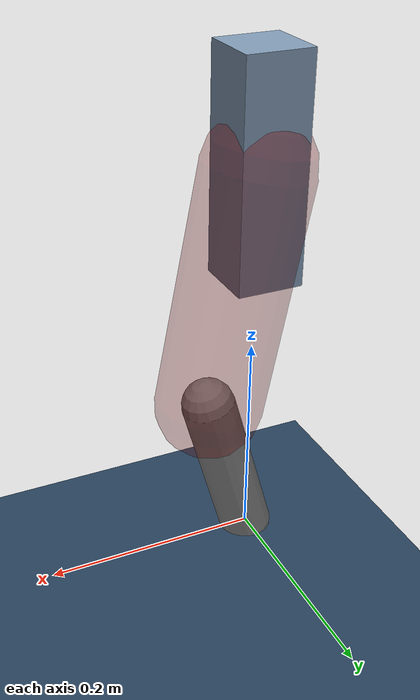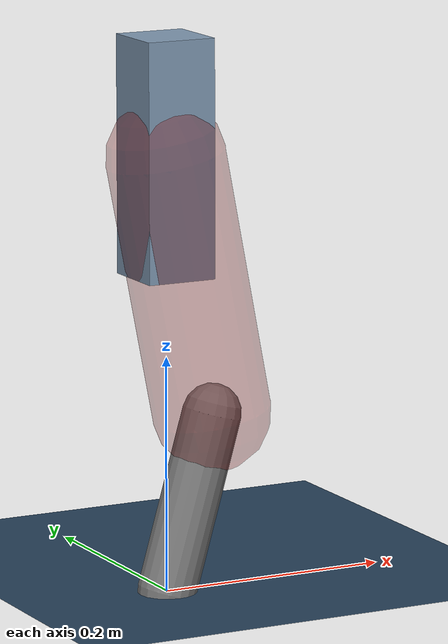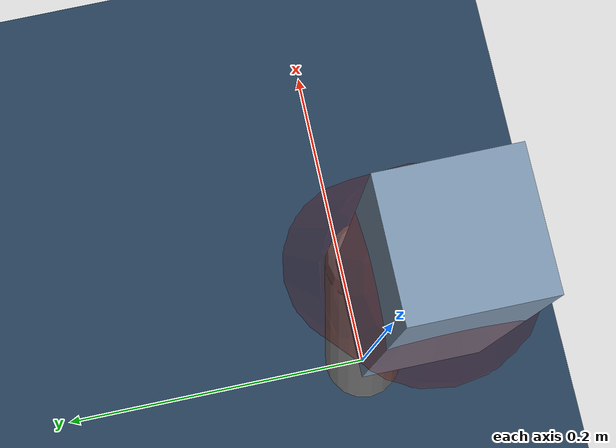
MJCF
<mujoco model="Hopper2D">
	<compiler inertiafromgeom="true" angle="radian" />
	<option timestep="0.001" integrator="implicit" cone="elliptic" solver="Newton" tolerance="1e-10" />

	<default>
		<geom contype="1" conaffinity="1" condim="3" friction="2 0.005 0.0001" solref="0.005 1" />
		<joint limited="true" damping="0.1" />
	</default>

	<asset>
		<texture name="skybox" type="skybox" builtin="gradient" rgb1=".4 .6 .8" rgb2="0 0 0" width="800" height="800" />
		<texture name="grid" type="2d" builtin="checker" rgb1=".1 .2 .3" rgb2=".2 .3 .4" width="300" height="300" mark="edge" markrgb=".2 .3 .4" />
		<material name="ground" texture="grid" texrepeat="1 1" texuniform="true" reflectance="0.1" />
		<material name="leg" rgba="0.5 0.6 0.7 1" />
	</asset>

	<worldbody>

		<geom name="floor" type="plane" size="5 5 0.25" material="ground" />

		<light directional="false" diffuse="0.8 0.8 0.8" specular="0.3 0.3 0.3" pos="0 0 2" dir="0 0 -1" />
		<light mode="targetbodycom" target="base" directional="false" diffuse="0.8 0.8 0.8" specular="0.3 0.3 0.3" pos="0 0 2" dir="0 0 -1" />

		<camera name="fixed" pos="0 -2 1" xyaxes="1 0 0 0 0 1" />
		<camera name="tracking" mode="trackcom" pos="0 -3 1" />

		<body name="root" pos="0 0 0.3687585696422728">
			<joint name="slide_x" type="slide" axis="1 0 0" range="-100 100" />
			<joint name="slide_z" type="slide" axis="0 0 1" range="0 10" />

			<body name="base" pos="0 0 0">
				<geom name="torso" type="box" size="0.03 0.03 0.1" mass="2.63" material="leg" />

				<body name="link1" pos="0 0 0" euler="0 1.3800130221820472 0">
					<joint type="hinge" axis="0 -1 0" pos="0 0 0" name="hinge1" limited="true" range="-3.14 3.14" stiffness="0" damping="0.1" />
					<geom name="thigh" type="capsule" fromto="0 0 0 0.22393148619773226 0 0" size="0.05" rgba="0.5 0 0 0.3" mass="0.7896287154943306" />

					<body name="link2" pos="0.22393148619773226 0 0" euler="0 0.4686088841688655 0">
						<joint type="hinge" axis="0 -1 0" pos="0 0 0" name="hinge2" limited="true" range="-3.14 3.14" stiffness="0" damping="0.1" />
						<geom name="shank" type="capsule" fromto="0 0 0 0.15482708344454055 0 0" size="0.025" mass="0.3619616667556324" />

					</body>
				</body>
			</body>
		</body>
	</worldbody>

	<actuator>
		<motor name="torque1" joint="hinge1" ctrlrange="-35.430979608527984 35.430979608527984" ctrllimited="true" gear="1" />
		<motor name="torque2" joint="hinge2" ctrlrange="-110.5739084837348 110.5739084837348" ctrllimited="true" gear="1" />
	</actuator>
</mujoco>
